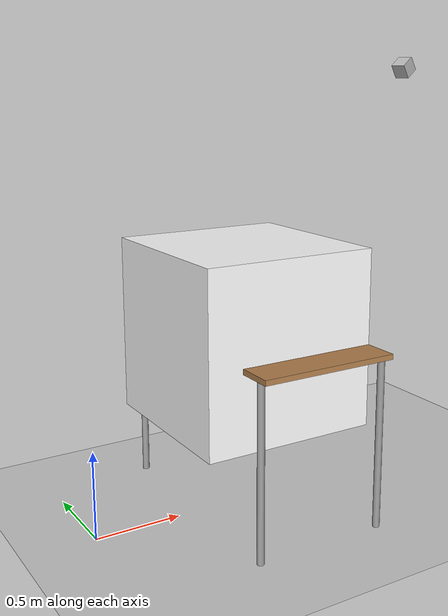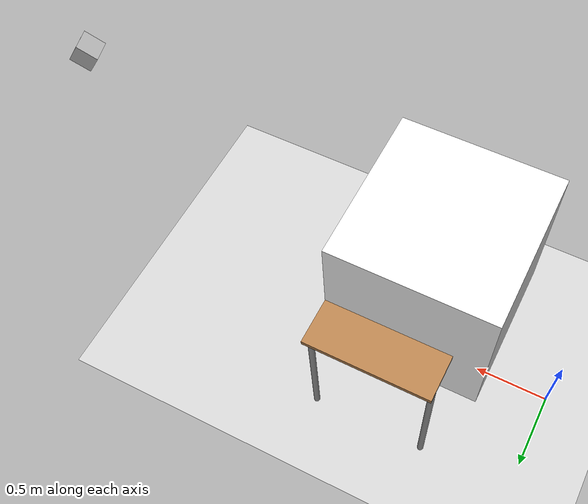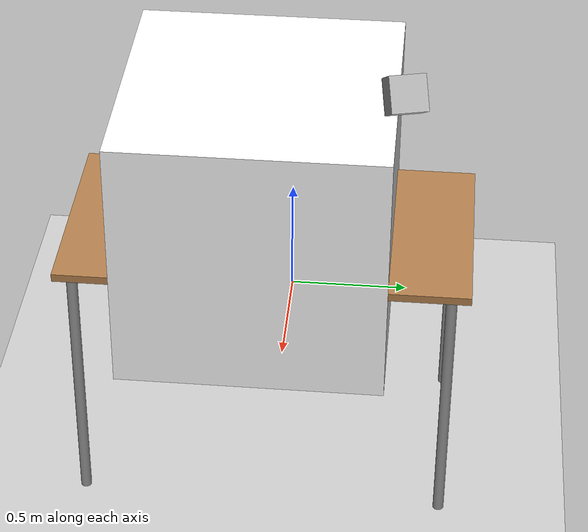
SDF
<?xml version="1.0" ?>
<sdf version="1.4">
  <world name="panda_land">
    <include>
      <uri>model://ground_plane</uri>
    </include>
    <include>
      <uri>model://sun</uri>
    </include>
    <include>
      <uri>model://table</uri>
      <pose>1 0 0 0 0 1.570796</pose>
    </include>
    <include>
      <uri>model://aruco_visual_marker_7</uri>
      <pose>0.900935 -0.045913 1.05 0 0 0</pose>
    </include>
    <model name='panda_ros_camera'>
      <link name='link'>
        <gravity>0</gravity>
        <inertial>
          <mass>0.1</mass>
          <inertia>
            <ixx>1</ixx>
            <ixy>0</ixy>
            <ixz>0</ixz>
            <iyy>1</iyy>
            <iyz>0</iyz>
            <izz>1</izz>
          </inertia>
        </inertial>
        <visual name='visual'>
          <geometry>
            <box>
              <size>0.1 0.1 0.1</size>
            </box>
          </geometry>
        </visual>
        <sensor name='camera' type='camera'>
          <update_rate>30</update_rate>
          <always_on>1</always_on>
          <visualize>1</visualize>
          <camera name='head'>
            <horizontal_fov>1.047</horizontal_fov>
            <image>
              <width>1920</width>
              <height>1080</height>
              <format>R8G8B8</format>
            </image>
            <clip>
              <near>0.1</near>
              <far>100</far>
            </clip>
          </camera>
          <plugin name="camera_controller" filename="libgazebo_ros_camera.so">
            <alwaysOn>true</alwaysOn>
            <updateRate>0.0</updateRate>
            <cameraName>panda_camera</cameraName>
            <imageTopicName>images</imageTopicName>
            <cameraInfoTopicName>camera_info</cameraInfoTopicName>
            <frameName>camera_frame</frameName>
            <hackBaseline>0.07</hackBaseline>
            <focal_length>1.4</focal_length>
            <distortionK1>0.0</distortionK1>
            <distortionK2>0.0</distortionK2>
            <distortionK3>0.0</distortionK3>
            <distortionT1>0.0</distortionT1>
            <distortionT2>0.0</distortionT2>
          </plugin>
        </sensor>
      </link>
      <pose>2.5 .5 2.5 0 0.6 -2.891589</pose>
    </model>
  </world>
</sdf>

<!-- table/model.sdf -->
<sdf version="1.5">
  <model name="table">
    <static>true</static>
    <link name="link">
      <collision name="surface">
        <pose>0 0 1.0 0 0 0</pose>
        <geometry>
          <box>
            <size>1.5 0.8 0.03</size>
          </box>
        </geometry>
        <surface>
          <friction>
            <ode>
              <mu>0.6</mu>
              <mu2>0.6</mu2>
            </ode>
          </friction>
        </surface>
      </collision>
      <visual name="visual1">
        <pose>0 0 1.0 0 0 0</pose>
        <geometry>
          <box>
            <size>1.5 0.8 0.03</size>
          </box>
        </geometry>
        <material>
          <script>
            <uri>model://media/materials/scripts/gazebo.material</uri>
            <name>Gazebo/Wood</name>
          </script>
        </material>
      </visual>
      <collision name="front_left_leg">
        <pose>0.68 0.38 0.5 0 0 0</pose>
        <geometry>
          <cylinder>
            <radius>0.02</radius>
            <length>1.0</length>
          </cylinder>
        </geometry>
      </collision>
      <visual name="front_left_leg">
        <pose>0.68 0.38 0.5 0 0 0</pose>
        <geometry>
          <cylinder>
            <radius>0.02</radius>
            <length>1.0</length>
          </cylinder>
        </geometry>
        <material>
          <script>
            <uri>model://media/materials/scripts/gazebo.material</uri>
            <name>Gazebo/Grey</name>
          </script>
        </material>
      </visual>
      <collision name="front_right_leg">
        <pose>0.68 -0.38 0.5 0 0 0</pose>
        <geometry>
          <cylinder>
            <radius>0.02</radius>
            <length>1.0</length>
          </cylinder>
        </geometry>
      </collision>
      <visual name="front_right_leg">
        <pose>0.68 -0.38 0.5 0 0 0</pose>
        <geometry>
          <cylinder>
            <radius>0.02</radius>
            <length>1.0</length>
          </cylinder>
        </geometry>
        <material>
          <script>
            <uri>model://media/materials/scripts/gazebo.material</uri>
            <name>Gazebo/Grey</name>
          </script>
        </material>
      </visual>
      <collision name="back_right_leg">
        <pose>-0.68 -0.38 0.5 0 0 0</pose>
        <geometry>
          <cylinder>
            <radius>0.02</radius>
            <length>1.0</length>
          </cylinder>
        </geometry>
      </collision>
      <visual name="back_right_leg">
        <pose>-0.68 -0.38 0.5 0 0 0</pose>
        <geometry>
          <cylinder>
            <radius>0.02</radius>
            <length>1.0</length>
          </cylinder>
        </geometry>
        <material>
          <script>
            <uri>model://media/materials/scripts/gazebo.material</uri>
            <name>Gazebo/Grey</name>
          </script>
        </material>
      </visual>
      <collision name="back_left_leg">
        <pose>-0.68 0.38 0.5 0 0 0</pose>
        <geometry>
          <cylinder>
            <radius>0.02</radius>
            <length>1.0</length>
          </cylinder>
        </geometry>
      </collision>
      <visual name="back_left_leg">
        <pose>-0.68 0.38 0.5 0 0 0</pose>
        <geometry>
          <cylinder>
            <radius>0.02</radius>
            <length>1.0</length>
          </cylinder>
        </geometry>
        <material>
          <script>
            <uri>model://media/materials/scripts/gazebo.material</uri>
            <name>Gazebo/Grey</name>
          </script>
        </material>
      </visual>
    </link>
  </model>
</sdf>

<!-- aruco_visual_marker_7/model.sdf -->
<sdf version='1.5'>
  <model name='aruco_visual_marker_7'>

    <link name='marker'>
      <pose frame=''>0 0 0 0 0 0</pose>
      <visual name='visual'>
        <geometry>
          <box>
            <size>1 1 1</size>
          </box>
        </geometry>
        <material>
          <script>
            <uri>model://aruco_visual_marker_7/materials/scripts</uri>
            <uri>model://aruco_visual_marker_7/materials/textures</uri>
            <name>ArucoVisualMarker7/Marker</name>
          </script>
          <ambient>1 1 1 1</ambient>
          <diffuse>1 1 1 1</diffuse>
          <specular>0 0 0 1</specular>
          <emissive>1 1 1 0</emissive>
          <shader type='vertex'>
            <normal_map>__default__</normal_map>
          </shader>
        </material>
        <pose frame=''>0 0 0 0 -0 0</pose>
        <cast_shadows>1</cast_shadows>
        <transparency>0</transparency>
      </visual>
      <collision name='collision'>
        <laser_retro>0</laser_retro>
        <max_contacts>10</max_contacts>
        <pose frame=''>0 0 0 0 -0 0</pose>
        <geometry>
          <box>
            <size>1 1 1</size>
          </box>
        </geometry>
      </collision>
    </link>

    <static>1</static>
    <allow_auto_disable>1</allow_auto_disable>

  </model>
</sdf>
